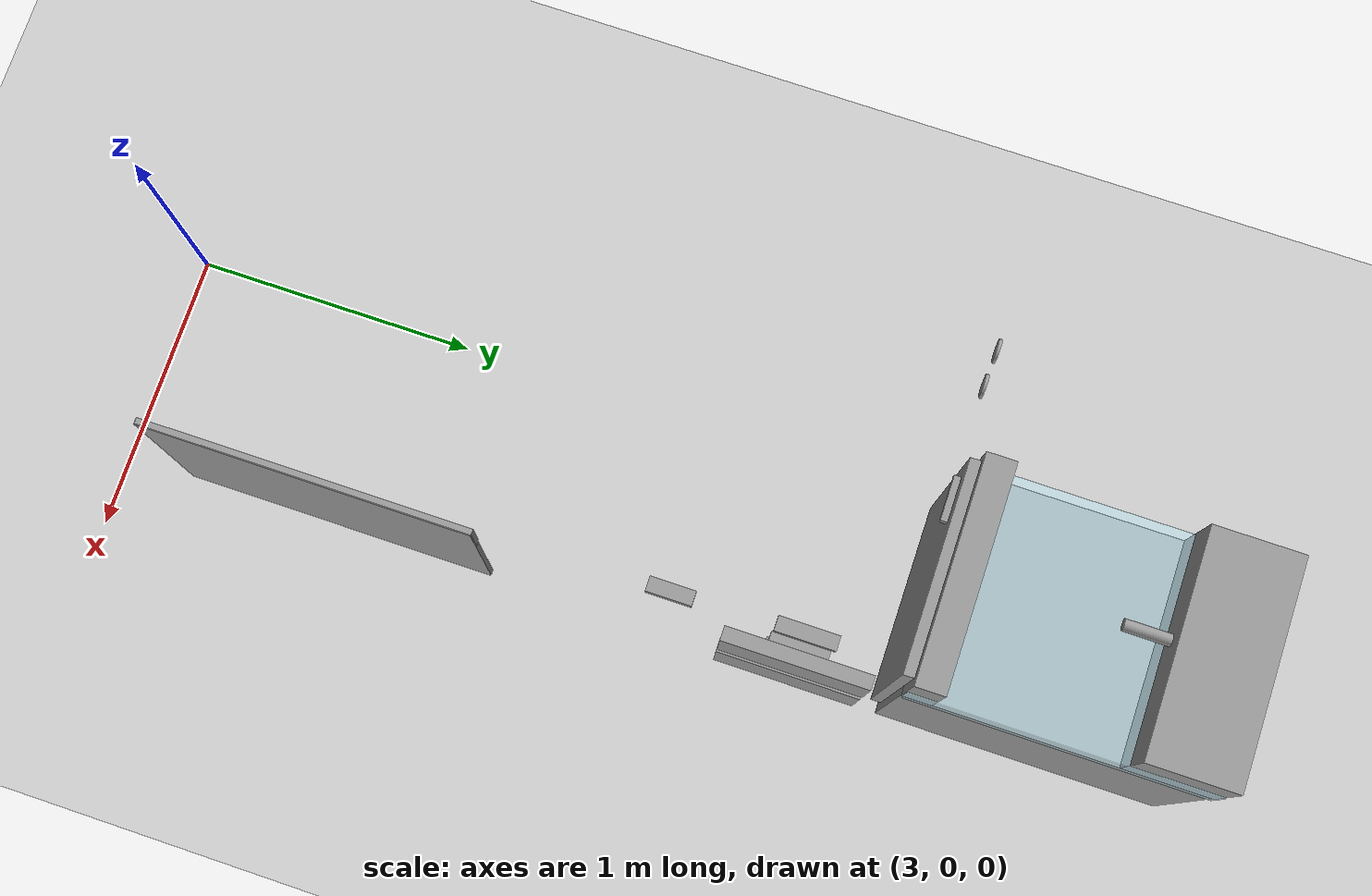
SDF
<sdf version="1.7">
 <world name="default">
  <model name="ground_plane">
   <static>1</static>
   <link name="link">
    <collision name="collision">
     <geometry><plane><normal>0 0 1</normal><size>100 100</size></plane></geometry>
     <surface>
      <contact><collide_bitmask>65535</collide_bitmask></contact>
      <friction><ode><mu>100</mu><mu2>50</mu2></ode></friction>
     </surface>
    </collision>
    <visual name="visual">
     <cast_shadows>0</cast_shadows>
     <geometry><plane><normal>0 0 1</normal><size>100 100</size></plane></geometry>
     <material>
      <script><uri>file://media/materials/scripts/gazebo.material</uri><name>Gazebo/Grey</name></script>
     </material>
    </visual>
   </link>
  </model>
  <model name="my_kitchen">
   <link name="link_0">
    <inertial>
     <mass>1</mass>
     <inertia><ixx>0.145833</ixx><ixy>0</ixy><ixz>0</ixz><iyy>0.145833</iyy><iyz>0</iyz><izz>0.125</izz></inertia>
    </inertial>
    <pose>-0.465747 -1.6095 0.842537 0 -0 0</pose>
    <visual name="visual">
     <pose>0 0 0 0 1.5707 0</pose>
     <geometry><cylinder><radius>0.04</radius><length>0.01</length></cylinder></geometry>
     <material>
      <lighting>1</lighting>
      <script><uri>file://media/materials/scripts/gazebo.material</uri><name>Gazebo/Grey</name></script>
      <shader type="pixel"><normal_map>__default__</normal_map></shader>
      <ambient>0.9 0.9 0.9 1</ambient>
      <diffuse>0.9 0.9 0.9 1</diffuse>
      <specular>0.01 0.01 0.01 1</specular>
      <emissive>0 0 0 1</emissive>
     </material>
    </visual>
    <collision name="collision">
     <pose>0 0 0 0 1.5707 0</pose>
     <geometry><cylinder><radius>0.04</radius><length>0.01</length></cylinder></geometry>
     <surface>
      <friction>
       <ode><mu>1</mu><mu2>1</mu2><fdir1>0 0 0</fdir1><slip1>0</slip1><slip2>0</slip2></ode>
       <torsional>
        <coefficient>1</coefficient>
        <patch_radius>0</patch_radius>
        <surface_radius>0</surface_radius>
        <use_patch_radius>1</use_patch_radius>
        <ode><slip>0</slip></ode>
       </torsional>
      </friction>
      <bounce><restitution_coefficient>0</restitution_coefficient><threshold>1e+06</threshold></bounce>
      <contact>
       <collide_without_contact>0</collide_without_contact>
       <collide_without_contact_bitmask>1</collide_without_contact_bitmask>
       <collide_bitmask>1</collide_bitmask>
       <ode>
        <soft_cfm>0</soft_cfm>
        <soft_erp>0.2</soft_erp>
        <kp>1e+13</kp>
        <kd>1</kd>
        <max_vel>0.01</max_vel>
        <min_depth>0</min_depth>
       </ode>
       <bullet>
        <split_impulse>1</split_impulse>
        <split_impulse_penetration_threshold>-0.01</split_impulse_penetration_threshold>
        <soft_cfm>0</soft_cfm>
        <soft_erp>0.2</soft_erp>
        <kp>1e+13</kp>
        <kd>1</kd>
       </bullet>
      </contact>
     </surface>
    </collision>
   </link>
   <link name="link_0_clone">
    <inertial>
     <mass>1</mass>
     <inertia><ixx>0.145833</ixx><ixy>0</ixy><ixz>0</ixz><iyy>0.145833</iyy><iyz>0</iyz><izz>0.125</izz></inertia>
    </inertial>
    <pose>-1.12966 -0.882077 0.956076 0 -0 0</pose>
    <gravity>0</gravity>
    <visual name="visual">
     <pose>0 0 0 0 1.5707 0</pose>
     <geometry><cylinder><radius>0.02</radius><length>0.15</length></cylinder></geometry>
     <material>
      <lighting>1</lighting>
      <script><uri>file://media/materials/scripts/gazebo.material</uri><name>Gazebo/Grey</name></script>
      <shader type="pixel"><normal_map>__default__</normal_map></shader>
      <ambient>0.2 0.2 0.2 1</ambient>
      <diffuse>0.2 0.2 0.2 1</diffuse>
      <specular>0.01 0.01 0.01 1</specular>
      <emissive>0 0 0 1</emissive>
     </material>
    </visual>
    <collision name="collision">
     <pose>0 0 0 0 1.5707 0</pose>
     <geometry><cylinder><radius>0.02</radius><length>0.15</length></cylinder></geometry>
     <surface>
      <friction>
       <ode><mu>1</mu><mu2>1</mu2><fdir1>0 0 0</fdir1><slip1>0</slip1><slip2>0</slip2></ode>
       <torsional>
        <coefficient>1</coefficient>
        <patch_radius>0</patch_radius>
        <surface_radius>0</surface_radius>
        <use_patch_radius>1</use_patch_radius>
        <ode><slip>0</slip></ode>
       </torsional>
      </friction>
      <bounce><restitution_coefficient>0</restitution_coefficient><threshold>1e+06</threshold></bounce>
      <contact>
       <collide_without_contact>0</collide_without_contact>
       <collide_without_contact_bitmask>1</collide_without_contact_bitmask>
       <collide_bitmask>1</collide_bitmask>
       <ode>
        <soft_cfm>0</soft_cfm>
        <soft_erp>0.2</soft_erp>
        <kp>1e+13</kp>
        <kd>1</kd>
        <max_vel>0.01</max_vel>
        <min_depth>0</min_depth>
       </ode>
       <bullet>
        <split_impulse>1</split_impulse>
        <split_impulse_penetration_threshold>-0.01</split_impulse_penetration_threshold>
        <soft_cfm>0</soft_cfm>
        <soft_erp>0.2</soft_erp>
        <kp>1e+13</kp>
        <kd>1</kd>
       </bullet>
      </contact>
     </surface>
    </collision>
   </link>
   <link name="link_0_clone_0">
    <inertial>
     <mass>1</mass>
     <inertia><ixx>0.145833</ixx><ixy>0</ixy><ixz>0</ixz><iyy>0.145833</iyy><iyz>0</iyz><izz>0.125</izz></inertia>
    </inertial>
    <pose>-0.459347 -1.48795 0.840731 0 -0 0</pose>
    <visual name="visual">
     <pose>0 0 0 0 1.5707 0</pose>
     <geometry><cylinder><radius>0.04</radius><length>0.01</length></cylinder></geometry>
     <material>
      <lighting>1</lighting>
      <script><uri>file://media/materials/scripts/gazebo.material</uri><name>Gazebo/Grey</name></script>
      <shader type="pixel"><normal_map>__default__</normal_map></shader>
      <ambient>0.9 0.9 0.9 1</ambient>
      <diffuse>0.9 0.9 0.9 1</diffuse>
      <specular>0.01 0.01 0.01 1</specular>
      <emissive>0 0 0 1</emissive>
     </material>
    </visual>
    <collision name="collision">
     <pose>0 0 0 0 1.5707 0</pose>
     <geometry><cylinder><radius>0.04</radius><length>0.01</length></cylinder></geometry>
     <surface>
      <friction>
       <ode><mu>1</mu><mu2>1</mu2><fdir1>0 0 0</fdir1><slip1>0</slip1><slip2>0</slip2></ode>
       <torsional>
        <coefficient>1</coefficient>
        <patch_radius>0</patch_radius>
        <surface_radius>0</surface_radius>
        <use_patch_radius>1</use_patch_radius>
        <ode><slip>0</slip></ode>
       </torsional>
      </friction>
      <bounce><restitution_coefficient>0</restitution_coefficient><threshold>1e+06</threshold></bounce>
      <contact>
       <collide_without_contact>0</collide_without_contact>
       <collide_without_contact_bitmask>1</collide_without_contact_bitmask>
       <collide_bitmask>1</collide_bitmask>
       <ode>
        <soft_cfm>0</soft_cfm>
        <soft_erp>0.2</soft_erp>
        <kp>1e+13</kp>
        <kd>1</kd>
        <max_vel>0.01</max_vel>
        <min_depth>0</min_depth>
       </ode>
       <bullet>
        <split_impulse>1</split_impulse>
        <split_impulse_penetration_threshold>-0.01</split_impulse_penetration_threshold>
        <soft_cfm>0</soft_cfm>
        <soft_erp>0.2</soft_erp>
        <kp>1e+13</kp>
        <kd>1</kd>
       </bullet>
      </contact>
     </surface>
    </collision>
   </link>
   <link name="link_0_clone_1">
    <inertial>
     <mass>1</mass>
     <inertia><ixx>0.145833</ixx><ixy>0</ixy><ixz>0</ixz><iyy>0.145833</iyy><iyz>0</iyz><izz>0.125</izz></inertia>
    </inertial>
    <pose>1.8493 -0.544143 0.806367 0 -0 0</pose>
    <visual name="visual">
     <pose>0 0 0 1.57013 1.5707 -0.000572</pose>
     <geometry><cylinder><radius>0.04</radius><length>0.01</length></cylinder></geometry>
     <material>
      <lighting>1</lighting>
      <script><uri>file://media/materials/scripts/gazebo.material</uri><name>Gazebo/Grey</name></script>
      <shader type="pixel"><normal_map>__default__</normal_map></shader>
      <ambient>0.9 0.9 0.9 1</ambient>
      <diffuse>0.9 0.9 0.9 1</diffuse>
      <specular>0.01 0.01 0.01 1</specular>
      <emissive>0 0 0 1</emissive>
     </material>
    </visual>
    <collision name="collision">
     <pose>0 0 0 1.5707 1.5707 -0</pose>
     <geometry><cylinder><radius>0.04</radius><length>0.01</length></cylinder></geometry>
     <surface>
      <friction>
       <ode><mu>1</mu><mu2>1</mu2><fdir1>0 0 0</fdir1><slip1>0</slip1><slip2>0</slip2></ode>
       <torsional>
        <coefficient>1</coefficient>
        <patch_radius>0</patch_radius>
        <surface_radius>0</surface_radius>
        <use_patch_radius>1</use_patch_radius>
        <ode><slip>0</slip></ode>
       </torsional>
      </friction>
      <bounce><restitution_coefficient>0</restitution_coefficient><threshold>1e+06</threshold></bounce>
      <contact>
       <collide_without_contact>0</collide_without_contact>
       <collide_without_contact_bitmask>1</collide_without_contact_bitmask>
       <collide_bitmask>1</collide_bitmask>
       <ode>
        <soft_cfm>0</soft_cfm>
        <soft_erp>0.2</soft_erp>
        <kp>1e+13</kp>
        <kd>1</kd>
        <max_vel>0.01</max_vel>
        <min_depth>0</min_depth>
       </ode>
       <bullet>
        <split_impulse>1</split_impulse>
        <split_impulse_penetration_threshold>-0.01</split_impulse_penetration_threshold>
        <soft_cfm>0</soft_cfm>
        <soft_erp>0.2</soft_erp>
        <kp>1e+13</kp>
        <kd>1</kd>
       </bullet>
      </contact>
     </surface>
    </collision>
   </link>
   <link name="link_0_clone_1_clone">
    <inertial>
     <mass>1</mass>
     <inertia><ixx>0.145833</ixx><ixy>0</ixy><ixz>0</ixz><iyy>0.145833</iyy><iyz>0</iyz><izz>0.125</izz></inertia>
    </inertial>
    <pose>1.72105 -0.544038 0.809821 0 -0 0</pose>
    <visual name="visual">
     <pose>0 0 0 1.57013 1.5707 -0.000572</pose>
     <geometry><cylinder><radius>0.04</radius><length>0.01</length></cylinder></geometry>
     <material>
      <lighting>1</lighting>
      <script><uri>file://media/materials/scripts/gazebo.material</uri><name>Gazebo/Grey</name></script>
      <shader type="pixel"><normal_map>__default__</normal_map></shader>
      <ambient>0.9 0.9 0.9 1</ambient>
      <diffuse>0.9 0.9 0.9 1</diffuse>
      <specular>0.01 0.01 0.01 1</specular>
      <emissive>0 0 0 1</emissive>
     </material>
    </visual>
    <collision name="collision">
     <pose>0 0 0 1.57013 1.5707 -0.000572</pose>
     <geometry><cylinder><radius>0.04</radius><length>0.01</length></cylinder></geometry>
     <surface>
      <friction>
       <ode><mu>1</mu><mu2>1</mu2><fdir1>0 0 0</fdir1><slip1>0</slip1><slip2>0</slip2></ode>
       <torsional>
        <coefficient>1</coefficient>
        <patch_radius>0</patch_radius>
        <surface_radius>0</surface_radius>
        <use_patch_radius>1</use_patch_radius>
        <ode><slip>0</slip></ode>
       </torsional>
      </friction>
      <bounce><restitution_coefficient>0</restitution_coefficient><threshold>1e+06</threshold></bounce>
      <contact>
       <collide_without_contact>0</collide_without_contact>
       <collide_without_contact_bitmask>1</collide_without_contact_bitmask>
       <collide_bitmask>1</collide_bitmask>
       <ode>
        <soft_cfm>0</soft_cfm>
        <soft_erp>0.2</soft_erp>
        <kp>1e+13</kp>
        <kd>1</kd>
        <max_vel>0.01</max_vel>
        <min_depth>0</min_depth>
       </ode>
       <bullet>
        <split_impulse>1</split_impulse>
        <split_impulse_penetration_threshold>-0.01</split_impulse_penetration_threshold>
        <soft_cfm>0</soft_cfm>
        <soft_erp>0.2</soft_erp>
        <kp>1e+13</kp>
        <kd>1</kd>
       </bullet>
      </contact>
     </surface>
    </collision>
   </link>
   <link name="link_clone_0_clone_0">
    <inertial>
     <mass>1</mass>
     <inertia>
      <ixx>0.166667</ixx>
      <ixy>0</ixy>
      <ixz>0</ixz>
      <iyy>0.166667</iyy>
      <iyz>0</iyz>
      <izz>0.166667</izz>
     </inertia>
    </inertial>
    <pose>1.44476 -0.529129 0.013848 0 -0 0</pose>
    <visual name="visual">
     <geometry><box><size>1.1 0.8 0.02</size></box></geometry>
     <material>
      <script><name>Gazebo/Grey</name><uri>file://media/materials/scripts/gazebo.material</uri></script>
      <shader type="pixel"><normal_map>__default__</normal_map></shader>
      <ambient>0.2 0.2 0.2 1</ambient>
      <diffuse>0.2 0.2 0.2 1</diffuse>
      <specular>0.01 0.01 0.01 1</specular>
      <emissive>0 0 0 1</emissive>
     </material>
     <pose>0 0 0.5 1.5707 -0 0</pose>
    </visual>
    <collision name="collision">
     <pose>0 0 0.5 1.5707 -0 0</pose>
     <geometry><box><size>1.1 0.8 0.02</size></box></geometry>
     <surface>
      <friction>
       <ode><mu>1</mu><mu2>1</mu2><fdir1>0 0 0</fdir1><slip1>0</slip1><slip2>0</slip2></ode>
       <torsional>
        <coefficient>1</coefficient>
        <patch_radius>0</patch_radius>
        <surface_radius>0</surface_radius>
        <use_patch_radius>1</use_patch_radius>
        <ode><slip>0</slip></ode>
       </torsional>
      </friction>
      <bounce><restitution_coefficient>0</restitution_coefficient><threshold>1e+06</threshold></bounce>
      <contact>
       <collide_without_contact>0</collide_without_contact>
       <collide_without_contact_bitmask>1</collide_without_contact_bitmask>
       <collide_bitmask>1</collide_bitmask>
       <ode>
        <soft_cfm>0</soft_cfm>
        <soft_erp>0.2</soft_erp>
        <kp>1e+13</kp>
        <kd>1</kd>
        <max_vel>0.01</max_vel>
        <min_depth>0</min_depth>
       </ode>
       <bullet>
        <split_impulse>1</split_impulse>
        <split_impulse_penetration_threshold>-0.01</split_impulse_penetration_threshold>
        <soft_cfm>0</soft_cfm>
        <soft_erp>0.2</soft_erp>
        <kp>1e+13</kp>
        <kd>1</kd>
       </bullet>
      </contact>
     </surface>
    </collision>
   </link>
   <link name="link_clone_0_clone_0_clone">
    <inertial>
     <mass>1</mass>
     <inertia>
      <ixx>0.166667</ixx>
      <ixy>0</ixy>
      <ixz>0</ixz>
      <iyy>0.166667</iyy>
      <iyz>0</iyz>
      <izz>0.166667</izz>
     </inertia>
    </inertial>
    <pose>1.44317 -0.53222 0.313912 0 -0 0</pose>
    <visual name="visual">
     <geometry><box><size>1.1 0.2 0.02</size></box></geometry>
     <material>
      <script><name>Gazebo/Grey</name><uri>file://media/materials/scripts/gazebo.material</uri></script>
      <shader type="pixel"><normal_map>__default__</normal_map></shader>
      <ambient>0.4 0.4 0.4 1</ambient>
      <diffuse>0.4 0.4 0.4 1</diffuse>
      <specular>0.01 0.01 0.01 1</specular>
      <emissive>0 0 0 1</emissive>
     </material>
     <pose>0 0 0.5 1.5707 -0 0</pose>
    </visual>
    <collision name="collision">
     <pose>0 0 0.5 1.5707 -0 0</pose>
     <geometry><box><size>1.1 0.2 0.02</size></box></geometry>
     <surface>
      <friction>
       <ode><mu>1</mu><mu2>1</mu2><fdir1>0 0 0</fdir1><slip1>0</slip1><slip2>0</slip2></ode>
       <torsional>
        <coefficient>1</coefficient>
        <patch_radius>0</patch_radius>
        <surface_radius>0</surface_radius>
        <use_patch_radius>1</use_patch_radius>
        <ode><slip>0</slip></ode>
       </torsional>
      </friction>
      <bounce><restitution_coefficient>0</restitution_coefficient><threshold>1e+06</threshold></bounce>
      <contact>
       <collide_without_contact>0</collide_without_contact>
       <collide_without_contact_bitmask>1</collide_without_contact_bitmask>
       <collide_bitmask>1</collide_bitmask>
       <ode>
        <soft_cfm>0</soft_cfm>
        <soft_erp>0.2</soft_erp>
        <kp>1e+13</kp>
        <kd>1</kd>
        <max_vel>0.01</max_vel>
        <min_depth>0</min_depth>
       </ode>
       <bullet>
        <split_impulse>1</split_impulse>
        <split_impulse_penetration_threshold>-0.01</split_impulse_penetration_threshold>
        <soft_cfm>0</soft_cfm>
        <soft_erp>0.2</soft_erp>
        <kp>1e+13</kp>
        <kd>1</kd>
       </bullet>
      </contact>
     </surface>
    </collision>
   </link>
   <link name="link_clone_0_clone_0_clone_clone">
    <inertial>
     <mass>1</mass>
     <inertia>
      <ixx>0.166667</ixx>
      <ixy>0</ixy>
      <ixz>0</ixz>
      <iyy>0.166667</iyy>
      <iyz>0</iyz>
      <izz>0.166667</izz>
     </inertia>
    </inertial>
    <pose>1.44437 -0.543751 0.146791 0 -0 0</pose>
    <gravity>0</gravity>
    <visual name="visual">
     <geometry><box><size>0.7 0.03 0.02</size></box></geometry>
     <material>
      <script><name>Gazebo/Grey</name><uri>file://media/materials/scripts/gazebo.material</uri></script>
      <shader type="pixel"><normal_map>__default__</normal_map></shader>
      <ambient>0.9 0.9 0.9 1</ambient>
      <diffuse>0.9 0.9 0.9 1</diffuse>
      <specular>0.01 0.01 0.01 1</specular>
      <emissive>0 0 0 1</emissive>
     </material>
     <pose>0 0 0.5 1.5707 -0 0</pose>
    </visual>
    <collision name="collision">
     <pose>0 0 0.5 1.5707 -0 0</pose>
     <geometry><box><size>0.7 0.03 0.02</size></box></geometry>
     <surface>
      <friction>
       <ode><mu>1</mu><mu2>1</mu2><fdir1>0 0 0</fdir1><slip1>0</slip1><slip2>0</slip2></ode>
       <torsional>
        <coefficient>1</coefficient>
        <patch_radius>0</patch_radius>
        <surface_radius>0</surface_radius>
        <use_patch_radius>1</use_patch_radius>
        <ode><slip>0</slip></ode>
       </torsional>
      </friction>
      <bounce><restitution_coefficient>0</restitution_coefficient><threshold>1e+06</threshold></bounce>
      <contact>
       <collide_without_contact>0</collide_without_contact>
       <collide_without_contact_bitmask>1</collide_without_contact_bitmask>
       <collide_bitmask>1</collide_bitmask>
       <ode>
        <soft_cfm>0</soft_cfm>
        <soft_erp>0.2</soft_erp>
        <kp>1e+13</kp>
        <kd>1</kd>
        <max_vel>0.01</max_vel>
        <min_depth>0</min_depth>
       </ode>
       <bullet>
        <split_impulse>1</split_impulse>
        <split_impulse_penetration_threshold>-0.01</split_impulse_penetration_threshold>
        <soft_cfm>0</soft_cfm>
        <soft_erp>0.2</soft_erp>
        <kp>1e+13</kp>
        <kd>1</kd>
       </bullet>
      </contact>
     </surface>
    </collision>
   </link>
   <link name="link_clone_clone">
    <inertial>
     <mass>1</mass>
     <inertia>
      <ixx>0.166667</ixx>
      <ixy>0</ixy>
      <ixz>0</ixz>
      <iyy>0.166667</iyy>
      <iyz>0</iyz>
      <izz>0.166667</izz>
     </inertia>
    </inertial>
    <pose>-1.36532 -0.875399 0.352062 0 -0 0</pose>
    <visual name="visual">
     <geometry><box><size>0.3 0.75 0.3</size></box></geometry>
     <material>
      <script><name>Gazebo/Grey</name><uri>file://media/materials/scripts/gazebo.material</uri></script>
      <shader type="pixel"><normal_map>__default__</normal_map></shader>
      <ambient>0.8 0.8 0.8 1</ambient>
      <diffuse>0.65 0.65 0.65 1</diffuse>
      <specular>0.01 0.01 0.01 1</specular>
      <emissive>0 0 0 1</emissive>
     </material>
     <pose>0 0 0.5 0 -0 0</pose>
    </visual>
    <collision name="collision">
     <pose>0 0 0.5 0 -0 0</pose>
     <geometry><box><size>0.3 0.75 0.3</size></box></geometry>
     <surface>
      <friction>
       <ode><mu>1</mu><mu2>1</mu2><fdir1>0 0 0</fdir1><slip1>0</slip1><slip2>0</slip2></ode>
       <torsional>
        <coefficient>1</coefficient>
        <patch_radius>0</patch_radius>
        <surface_radius>0</surface_radius>
        <use_patch_radius>1</use_patch_radius>
        <ode><slip>0</slip></ode>
       </torsional>
      </friction>
      <bounce><restitution_coefficient>0</restitution_coefficient><threshold>1e+06</threshold></bounce>
      <contact>
       <collide_without_contact>0</collide_without_contact>
       <collide_without_contact_bitmask>1</collide_without_contact_bitmask>
       <collide_bitmask>1</collide_bitmask>
       <ode>
        <soft_cfm>0</soft_cfm>
        <soft_erp>0.2</soft_erp>
        <kp>1e+13</kp>
        <kd>1</kd>
        <max_vel>0.01</max_vel>
        <min_depth>0</min_depth>
       </ode>
       <bullet>
        <split_impulse>1</split_impulse>
        <split_impulse_penetration_threshold>-0.01</split_impulse_penetration_threshold>
        <soft_cfm>0</soft_cfm>
        <soft_erp>0.2</soft_erp>
        <kp>1e+13</kp>
        <kd>1</kd>
       </bullet>
      </contact>
     </surface>
    </collision>
   </link>
   <link name="link_clone_clone_clone">
    <inertial>
     <mass>1</mass>
     <inertia>
      <ixx>0.166667</ixx>
      <ixy>0</ixy>
      <ixz>0</ixz>
      <iyy>0.166667</iyy>
      <iyz>0</iyz>
      <izz>0.166667</izz>
     </inertia>
    </inertial>
    <pose>-1.01121 -0.87639 -0.152519 0 -0 0</pose>
    <visual name="visual">
     <geometry><box><size>1 0.75 0.7</size></box></geometry>
     <material>
      <script><name>Gazebo/Grey</name><uri>file://media/materials/scripts/gazebo.material</uri></script>
      <shader type="pixel"><normal_map>__default__</normal_map></shader>
      <ambient>0.8 0.8 0.8 1</ambient>
      <diffuse>0.65 0.65 0.65 1</diffuse>
      <specular>0.01 0.01 0.01 1</specular>
      <emissive>0 0 0 1</emissive>
     </material>
     <pose>0 0 0.5 0 -0 0</pose>
    </visual>
    <collision name="collision">
     <pose>0 0 0.5 0 -0 0</pose>
     <geometry><box><size>1 0.75 0.7</size></box></geometry>
     <surface>
      <friction>
       <ode><mu>1</mu><mu2>1</mu2><fdir1>0 0 0</fdir1><slip1>0</slip1><slip2>0</slip2></ode>
       <torsional>
        <coefficient>1</coefficient>
        <patch_radius>0</patch_radius>
        <surface_radius>0</surface_radius>
        <use_patch_radius>1</use_patch_radius>
        <ode><slip>0</slip></ode>
       </torsional>
      </friction>
      <bounce><restitution_coefficient>0</restitution_coefficient><threshold>1e+06</threshold></bounce>
      <contact>
       <collide_without_contact>0</collide_without_contact>
       <collide_without_contact_bitmask>1</collide_without_contact_bitmask>
       <collide_bitmask>1</collide_bitmask>
       <ode>
        <soft_cfm>0</soft_cfm>
        <soft_erp>0.2</soft_erp>
        <kp>1e+13</kp>
        <kd>1</kd>
        <max_vel>0.01</max_vel>
        <min_depth>0</min_depth>
       </ode>
       <bullet>
        <split_impulse>1</split_impulse>
        <split_impulse_penetration_threshold>-0.01</split_impulse_penetration_threshold>
        <soft_cfm>0</soft_cfm>
        <soft_erp>0.2</soft_erp>
        <kp>1e+13</kp>
        <kd>1</kd>
       </bullet>
      </contact>
     </surface>
    </collision>
   </link>
   <link name="link_clone_clone_clone_0">
    <inertial>
     <mass>1</mass>
     <inertia>
      <ixx>0.166667</ixx>
      <ixy>0</ixy>
      <ixz>0</ixz>
      <iyy>0.166667</iyy>
      <iyz>0</iyz>
      <izz>0.166667</izz>
     </inertia>
    </inertial>
    <pose>-0.56153 -0.875379 0.346728 0 -0 0</pose>
    <gravity>0</gravity>
    <visual name="visual">
     <geometry><box><size>0.1 0.75 0.3</size></box></geometry>
     <material>
      <script><name>Gazebo/Grey</name><uri>file://media/materials/scripts/gazebo.material</uri></script>
      <shader type="pixel"><normal_map>__default__</normal_map></shader>
      <ambient>0.8 0.8 0.8 1</ambient>
      <diffuse>0.65 0.65 0.65 1</diffuse>
      <specular>0.01 0.01 0.01 1</specular>
      <emissive>0 0 0 1</emissive>
     </material>
     <pose>0 0 0.5 0 -0 0</pose>
    </visual>
    <collision name="collision">
     <pose>0 0 0.5 0 -0 0</pose>
     <geometry><box><size>0.1 0.75 0.3</size></box></geometry>
     <surface>
      <friction>
       <ode><mu>1</mu><mu2>1</mu2><fdir1>0 0 0</fdir1><slip1>0</slip1><slip2>0</slip2></ode>
       <torsional>
        <coefficient>1</coefficient>
        <patch_radius>0</patch_radius>
        <surface_radius>0</surface_radius>
        <use_patch_radius>1</use_patch_radius>
        <ode><slip>0</slip></ode>
       </torsional>
      </friction>
      <bounce><restitution_coefficient>0</restitution_coefficient><threshold>1e+06</threshold></bounce>
      <contact>
       <collide_without_contact>0</collide_without_contact>
       <collide_without_contact_bitmask>1</collide_without_contact_bitmask>
       <collide_bitmask>1</collide_bitmask>
       <ode>
        <soft_cfm>0</soft_cfm>
        <soft_erp>0.2</soft_erp>
        <kp>1e+13</kp>
        <kd>1</kd>
        <max_vel>0.01</max_vel>
        <min_depth>0</min_depth>
       </ode>
       <bullet>
        <split_impulse>1</split_impulse>
        <split_impulse_penetration_threshold>-0.01</split_impulse_penetration_threshold>
        <soft_cfm>0</soft_cfm>
        <soft_erp>0.2</soft_erp>
        <kp>1e+13</kp>
        <kd>1</kd>
       </bullet>
      </contact>
     </surface>
    </collision>
   </link>
   <link name="link_clone_clone_clone_0_clone_clone_clone">
    <inertial>
     <mass>1</mass>
     <inertia>
      <ixx>0.166667</ixx>
      <ixy>0</ixy>
      <ixz>0</ixz>
      <iyy>0.166667</iyy>
      <iyz>0</iyz>
      <izz>0.166667</izz>
     </inertia>
    </inertial>
    <pose>-0.4781 -1.10993 0.338029 0 -0 0</pose>
    <gravity>0</gravity>
    <visual name="visual">
     <geometry><box><size>0.05 0.15 0.03</size></box></geometry>
     <material>
      <script><name>Gazebo/Grey</name><uri>file://media/materials/scripts/gazebo.material</uri></script>
      <shader type="pixel"><normal_map>__default__</normal_map></shader>
      <ambient>0.9 0.9 0.9 1</ambient>
      <diffuse>0.8 0.8 0.8 1</diffuse>
      <specular>0.01 0.01 0.01 1</specular>
      <emissive>0 0 0 1</emissive>
     </material>
     <pose>0 0 0.5 0 -0 0</pose>
    </visual>
    <collision name="collision">
     <pose>0 0 0.5 0 -0 0</pose>
     <geometry><box><size>0.05 0.15 0.03</size></box></geometry>
     <surface>
      <friction>
       <ode><mu>1</mu><mu2>1</mu2><fdir1>0 0 0</fdir1><slip1>0</slip1><slip2>0</slip2></ode>
       <torsional>
        <coefficient>1</coefficient>
        <patch_radius>0</patch_radius>
        <surface_radius>0</surface_radius>
        <use_patch_radius>1</use_patch_radius>
        <ode><slip>0</slip></ode>
       </torsional>
      </friction>
      <bounce><restitution_coefficient>0</restitution_coefficient><threshold>1e+06</threshold></bounce>
      <contact>
       <collide_without_contact>0</collide_without_contact>
       <collide_without_contact_bitmask>1</collide_without_contact_bitmask>
       <collide_bitmask>1</collide_bitmask>
       <ode>
        <soft_cfm>0</soft_cfm>
        <soft_erp>0.2</soft_erp>
        <kp>1e+13</kp>
        <kd>1</kd>
        <max_vel>0.01</max_vel>
        <min_depth>0</min_depth>
       </ode>
       <bullet>
        <split_impulse>1</split_impulse>
        <split_impulse_penetration_threshold>-0.01</split_impulse_penetration_threshold>
        <soft_cfm>0</soft_cfm>
        <soft_erp>0.2</soft_erp>
        <kp>1e+13</kp>
        <kd>1</kd>
       </bullet>
      </contact>
     </surface>
    </collision>
   </link>
   <link name="link_clone_clone_clone_0_clone_clone_clone_0_clone">
    <inertial>
     <mass>1</mass>
     <inertia>
      <ixx>0.166667</ixx>
      <ixy>0</ixy>
      <ixz>0</ixz>
      <iyy>0.166667</iyy>
      <iyz>0</iyz>
      <izz>0.166667</izz>
     </inertia>
    </inertial>
    <pose>-0.50046 -0.88146 0.016041 0 -0 0</pose>
    <visual name="visual">
     <geometry><box><size>0.05 0.7 0.85</size></box></geometry>
     <material>
      <script><name>Gazebo/Grey</name><uri>file://media/materials/scripts/gazebo.material</uri></script>
      <shader type="pixel"><normal_map>__default__</normal_map></shader>
      <ambient>0.4 0.4 0.4 1</ambient>
      <diffuse>0.4 0.4 0.4 1</diffuse>
      <specular>0.01 0.01 0.01 1</specular>
      <emissive>0 0 0 1</emissive>
     </material>
     <pose>0 0 0.5 0 -0 0</pose>
    </visual>
    <collision name="collision">
     <pose>0 0 0.5 0 -0 0</pose>
     <geometry><box><size>0.05 0.7 0.85</size></box></geometry>
     <surface>
      <friction>
       <ode><mu>1</mu><mu2>1</mu2><fdir1>0 0 0</fdir1><slip1>0</slip1><slip2>0</slip2></ode>
       <torsional>
        <coefficient>1</coefficient>
        <patch_radius>0</patch_radius>
        <surface_radius>0</surface_radius>
        <use_patch_radius>1</use_patch_radius>
        <ode><slip>0</slip></ode>
       </torsional>
      </friction>
      <bounce><restitution_coefficient>0</restitution_coefficient><threshold>1e+06</threshold></bounce>
      <contact>
       <collide_without_contact>0</collide_without_contact>
       <collide_without_contact_bitmask>1</collide_without_contact_bitmask>
       <collide_bitmask>1</collide_bitmask>
       <ode>
        <soft_cfm>0</soft_cfm>
        <soft_erp>0.2</soft_erp>
        <kp>1e+13</kp>
        <kd>1</kd>
        <max_vel>0.01</max_vel>
        <min_depth>0</min_depth>
       </ode>
       <bullet>
        <split_impulse>1</split_impulse>
        <split_impulse_penetration_threshold>-0.01</split_impulse_penetration_threshold>
        <soft_cfm>0</soft_cfm>
        <soft_erp>0.2</soft_erp>
        <kp>1e+13</kp>
        <kd>1</kd>
       </bullet>
      </contact>
     </surface>
    </collision>
   </link>
   <link name="link_clone_clone_clone_0_clone_clone_clone_0_clone_clone_clone_0_clone_0">
    <inertial>
     <mass>1</mass>
     <inertia>
      <ixx>0.166667</ixx>
      <ixy>0</ixy>
      <ixz>0</ixz>
      <iyy>0.166667</iyy>
      <iyz>0</iyz>
      <izz>0.166667</izz>
     </inertia>
    </inertial>
    <pose>-0.174147 -0.517268 0.010923 0 -0 0</pose>
    <gravity>0</gravity>
    <visual name="visual">
     <geometry><box><size>0.05 0.5 0.25</size></box></geometry>
     <material>
      <script><name>Gazebo/Grey</name><uri>file://media/materials/scripts/gazebo.material</uri></script>
      <shader type="pixel"><normal_map>__default__</normal_map></shader>
      <ambient>0.4 0.4 0.4 1</ambient>
      <diffuse>0.4 0.4 0.4 1</diffuse>
      <specular>0.01 0.01 0.01 1</specular>
      <emissive>0 0 0 1</emissive>
     </material>
     <pose>0 0 0.5 0 -0 1.5707</pose>
    </visual>
    <collision name="collision">
     <pose>0 0 0.5 0 -0 1.5707</pose>
     <geometry><box><size>0.05 0.5 0.25</size></box></geometry>
     <surface>
      <friction>
       <ode><mu>1</mu><mu2>1</mu2><fdir1>0 0 0</fdir1><slip1>0</slip1><slip2>0</slip2></ode>
       <torsional>
        <coefficient>1</coefficient>
        <patch_radius>0</patch_radius>
        <surface_radius>0</surface_radius>
        <use_patch_radius>1</use_patch_radius>
        <ode><slip>0</slip></ode>
       </torsional>
      </friction>
      <bounce><restitution_coefficient>0</restitution_coefficient><threshold>1e+06</threshold></bounce>
      <contact>
       <collide_without_contact>0</collide_without_contact>
       <collide_without_contact_bitmask>1</collide_without_contact_bitmask>
       <collide_bitmask>1</collide_bitmask>
       <ode>
        <soft_cfm>0</soft_cfm>
        <soft_erp>0.2</soft_erp>
        <kp>1e+13</kp>
        <kd>1</kd>
        <max_vel>0.01</max_vel>
        <min_depth>0</min_depth>
       </ode>
       <bullet>
        <split_impulse>1</split_impulse>
        <split_impulse_penetration_threshold>-0.01</split_impulse_penetration_threshold>
        <soft_cfm>0</soft_cfm>
        <soft_erp>0.2</soft_erp>
        <kp>1e+13</kp>
        <kd>1</kd>
       </bullet>
      </contact>
     </surface>
    </collision>
   </link>
   <link name="link_clone_clone_clone_0_clone_clone_clone_0_clone_clone_clone_0_clone_0_clone">
    <inertial>
     <mass>1</mass>
     <inertia>
      <ixx>0.166667</ixx>
      <ixy>0</ixy>
      <ixz>0</ixz>
      <iyy>0.166667</iyy>
      <iyz>0</iyz>
      <izz>0.166667</izz>
     </inertia>
    </inertial>
    <pose>-0.172613 -0.514864 -0.287733 0 -0 0</pose>
    <visual name="visual">
     <geometry><box><size>0.05 0.5 0.25</size></box></geometry>
     <material>
      <script><name>Gazebo/Grey</name><uri>file://media/materials/scripts/gazebo.material</uri></script>
      <shader type="pixel"><normal_map>__default__</normal_map></shader>
      <ambient>0.4 0.4 0.4 1</ambient>
      <diffuse>0.4 0.4 0.4 1</diffuse>
      <specular>0.01 0.01 0.01 1</specular>
      <emissive>0 0 0 1</emissive>
     </material>
     <pose>0 0 0.5 0 -0 1.5707</pose>
    </visual>
    <collision name="collision">
     <pose>0 0 0.5 0 -0 1.5707</pose>
     <geometry><box><size>0.05 0.5 0.25</size></box></geometry>
     <surface>
      <friction>
       <ode><mu>1</mu><mu2>1</mu2><fdir1>0 0 0</fdir1><slip1>0</slip1><slip2>0</slip2></ode>
       <torsional>
        <coefficient>1</coefficient>
        <patch_radius>0</patch_radius>
        <surface_radius>0</surface_radius>
        <use_patch_radius>1</use_patch_radius>
        <ode><slip>0</slip></ode>
       </torsional>
      </friction>
      <bounce><restitution_coefficient>0</restitution_coefficient><threshold>1e+06</threshold></bounce>
      <contact>
       <collide_without_contact>0</collide_without_contact>
       <collide_without_contact_bitmask>1</collide_without_contact_bitmask>
       <collide_bitmask>1</collide_bitmask>
       <ode>
        <soft_cfm>0</soft_cfm>
        <soft_erp>0.2</soft_erp>
        <kp>1e+13</kp>
        <kd>1</kd>
        <max_vel>0.01</max_vel>
        <min_depth>0</min_depth>
       </ode>
       <bullet>
        <split_impulse>1</split_impulse>
        <split_impulse_penetration_threshold>-0.01</split_impulse_penetration_threshold>
        <soft_cfm>0</soft_cfm>
        <soft_erp>0.2</soft_erp>
        <kp>1e+13</kp>
        <kd>1</kd>
       </bullet>
      </contact>
     </surface>
    </collision>
   </link>
   <link name="link_clone_clone_clone_0_clone_clone_clone_clone_1_clone_0">
    <inertial>
     <mass>1</mass>
     <inertia>
      <ixx>0.166667</ixx>
      <ixy>0</ixy>
      <ixz>0</ixz>
      <iyy>0.166667</iyy>
      <iyz>0</iyz>
      <izz>0.166667</izz>
     </inertia>
    </inertial>
    <pose>0.264715 -0.561956 0.338029 0 -0 0</pose>
    <gravity>0</gravity>
    <visual name="visual">
     <geometry><box><size>0.05 0.15 0.03</size></box></geometry>
     <material>
      <script><name>Gazebo/Grey</name><uri>file://media/materials/scripts/gazebo.material</uri></script>
      <shader type="pixel"><normal_map>__default__</normal_map></shader>
      <ambient>0.9 0.9 0.9 1</ambient>
      <diffuse>0.8 0.8 0.8 1</diffuse>
      <specular>0.01 0.01 0.01 1</specular>
      <emissive>0 0 0 1</emissive>
     </material>
     <pose>0 0 0.5 0 -0 1.5707</pose>
    </visual>
    <collision name="collision">
     <pose>0 0 0.5 0 -0 1.5707</pose>
     <geometry><box><size>0.05 0.15 0.03</size></box></geometry>
     <surface>
      <friction>
       <ode><mu>1</mu><mu2>1</mu2><fdir1>0 0 0</fdir1><slip1>0</slip1><slip2>0</slip2></ode>
       <torsional>
        <coefficient>1</coefficient>
        <patch_radius>0</patch_radius>
        <surface_radius>0</surface_radius>
        <use_patch_radius>1</use_patch_radius>
        <ode><slip>0</slip></ode>
       </torsional>
      </friction>
      <bounce><restitution_coefficient>0</restitution_coefficient><threshold>1e+06</threshold></bounce>
      <contact>
       <collide_without_contact>0</collide_without_contact>
       <collide_without_contact_bitmask>1</collide_without_contact_bitmask>
       <collide_bitmask>1</collide_bitmask>
       <ode>
        <soft_cfm>0</soft_cfm>
        <soft_erp>0.2</soft_erp>
        <kp>1e+13</kp>
        <kd>1</kd>
        <max_vel>0.01</max_vel>
        <min_depth>0</min_depth>
       </ode>
       <bullet>
        <split_impulse>1</split_impulse>
        <split_impulse_penetration_threshold>-0.01</split_impulse_penetration_threshold>
        <soft_cfm>0</soft_cfm>
        <soft_erp>0.2</soft_erp>
        <kp>1e+13</kp>
        <kd>1</kd>
       </bullet>
      </contact>
     </surface>
    </collision>
   </link>
   <link name="link_clone_clone_clone_0_clone_clone_clone_clone_1_clone_0_clone">
    <inertial>
     <mass>1</mass>
     <inertia>
      <ixx>0.166667</ixx>
      <ixy>0</ixy>
      <ixz>0</ixz>
      <iyy>0.166667</iyy>
      <iyz>0</iyz>
      <izz>0.166667</izz>
     </inertia>
    </inertial>
    <pose>-0.172178 -0.559644 0.047956 0 -0 0</pose>
    <gravity>0</gravity>
    <visual name="visual">
     <geometry><box><size>0.05 0.2 0.03</size></box></geometry>
     <material>
      <script><name>Gazebo/Grey</name><uri>file://media/materials/scripts/gazebo.material</uri></script>
      <shader type="pixel"><normal_map>__default__</normal_map></shader>
      <ambient>0.9 0.9 0.9 1</ambient>
      <diffuse>0.8 0.8 0.8 1</diffuse>
      <specular>0.01 0.01 0.01 1</specular>
      <emissive>0 0 0 1</emissive>
     </material>
     <pose>0 0 0.5 0 -0 1.5707</pose>
    </visual>
    <collision name="collision">
     <pose>0 0 0.5 0 -0 1.5707</pose>
     <geometry><box><size>0.05 0.2 0.03</size></box></geometry>
     <surface>
      <friction>
       <ode><mu>1</mu><mu2>1</mu2><fdir1>0 0 0</fdir1><slip1>0</slip1><slip2>0</slip2></ode>
       <torsional>
        <coefficient>1</coefficient>
        <patch_radius>0</patch_radius>
        <surface_radius>0</surface_radius>
        <use_patch_radius>1</use_patch_radius>
        <ode><slip>0</slip></ode>
       </torsional>
      </friction>
      <bounce><restitution_coefficient>0</restitution_coefficient><threshold>1e+06</threshold></bounce>
      <contact>
       <collide_without_contact>0</collide_without_contact>
       <collide_without_contact_bitmask>1</collide_without_contact_bitmask>
       <collide_bitmask>1</collide_bitmask>
       <ode>
        <soft_cfm>0</soft_cfm>
        <soft_erp>0.2</soft_erp>
        <kp>1e+13</kp>
        <kd>1</kd>
        <max_vel>0.01</max_vel>
        <min_depth>0</min_depth>
       </ode>
       <bullet>
        <split_impulse>1</split_impulse>
        <split_impulse_penetration_threshold>-0.01</split_impulse_penetration_threshold>
        <soft_cfm>0</soft_cfm>
        <soft_erp>0.2</soft_erp>
        <kp>1e+13</kp>
        <kd>1</kd>
       </bullet>
      </contact>
     </surface>
    </collision>
   </link>
   <link name="link_clone_clone_clone_0_clone_clone_clone_clone_1_clone_0_clone_clone">
    <inertial>
     <mass>1</mass>
     <inertia>
      <ixx>0.166667</ixx>
      <ixy>0</ixy>
      <ixz>0</ixz>
      <iyy>0.166667</iyy>
      <iyz>0</iyz>
      <izz>0.166667</izz>
     </inertia>
    </inertial>
    <pose>-0.171122 -0.571169 0.338029 0 -0 0</pose>
    <gravity>0</gravity>
    <visual name="visual">
     <geometry><box><size>0.05 0.2 0.03</size></box></geometry>
     <material>
      <script><name>Gazebo/Grey</name><uri>file://media/materials/scripts/gazebo.material</uri></script>
      <shader type="pixel"><normal_map>__default__</normal_map></shader>
      <ambient>0.9 0.9 0.9 1</ambient>
      <diffuse>0.8 0.8 0.8 1</diffuse>
      <specular>0.01 0.01 0.01 1</specular>
      <emissive>0 0 0 1</emissive>
     </material>
     <pose>0 0 0.5 0 -0 1.5707</pose>
    </visual>
    <collision name="collision">
     <pose>0 0 0.5 0 -0 1.5707</pose>
     <geometry><box><size>0.05 0.2 0.03</size></box></geometry>
     <surface>
      <friction>
       <ode><mu>1</mu><mu2>1</mu2><fdir1>0 0 0</fdir1><slip1>0</slip1><slip2>0</slip2></ode>
       <torsional>
        <coefficient>1</coefficient>
        <patch_radius>0</patch_radius>
        <surface_radius>0</surface_radius>
        <use_patch_radius>1</use_patch_radius>
        <ode><slip>0</slip></ode>
       </torsional>
      </friction>
      <bounce><restitution_coefficient>0</restitution_coefficient><threshold>1e+06</threshold></bounce>
      <contact>
       <collide_without_contact>0</collide_without_contact>
       <collide_without_contact_bitmask>1</collide_without_contact_bitmask>
       <collide_bitmask>1</collide_bitmask>
       <ode>
        <soft_cfm>0</soft_cfm>
        <soft_erp>0.2</soft_erp>
        <kp>1e+13</kp>
        <kd>1</kd>
        <max_vel>0.01</max_vel>
        <min_depth>0</min_depth>
       </ode>
       <bullet>
        <split_impulse>1</split_impulse>
        <split_impulse_penetration_threshold>-0.01</split_impulse_penetration_threshold>
        <soft_cfm>0</soft_cfm>
        <soft_erp>0.2</soft_erp>
        <kp>1e+13</kp>
        <kd>1</kd>
       </bullet>
      </contact>
     </surface>
    </collision>
   </link>
   <link name="link_clone_clone_clone_0_clone_clone_clone_clone_1_clone_0_clone_clone_clone">
    <inertial>
     <mass>1</mass>
     <inertia>
      <ixx>0.166667</ixx>
      <ixy>0</ixy>
      <ixz>0</ixz>
      <iyy>0.166667</iyy>
      <iyz>0</iyz>
      <izz>0.166667</izz>
     </inertia>
    </inertial>
    <pose>-0.169187 -0.575049 -0.243065 0 -0 0</pose>
    <gravity>0</gravity>
    <visual name="visual">
     <geometry><box><size>0.05 0.2 0.03</size></box></geometry>
     <material>
      <script><name>Gazebo/Grey</name><uri>file://media/materials/scripts/gazebo.material</uri></script>
      <shader type="pixel"><normal_map>__default__</normal_map></shader>
      <ambient>0.9 0.9 0.9 1</ambient>
      <diffuse>0.8 0.8 0.8 1</diffuse>
      <specular>0.01 0.01 0.01 1</specular>
      <emissive>0 0 0 1</emissive>
     </material>
     <pose>0 0 0.5 0 -0 1.5707</pose>
    </visual>
    <collision name="collision">
     <pose>0 0 0.5 0 -0 1.5707</pose>
     <geometry><box><size>0.05 0.2 0.03</size></box></geometry>
     <surface>
      <friction>
       <ode><mu>1</mu><mu2>1</mu2><fdir1>0 0 0</fdir1><slip1>0</slip1><slip2>0</slip2></ode>
       <torsional>
        <coefficient>1</coefficient>
        <patch_radius>0</patch_radius>
        <surface_radius>0</surface_radius>
        <use_patch_radius>1</use_patch_radius>
        <ode><slip>0</slip></ode>
       </torsional>
      </friction>
      <bounce><restitution_coefficient>0</restitution_coefficient><threshold>1e+06</threshold></bounce>
      <contact>
       <collide_without_contact>0</collide_without_contact>
       <collide_without_contact_bitmask>1</collide_without_contact_bitmask>
       <collide_bitmask>1</collide_bitmask>
       <ode>
        <soft_cfm>0</soft_cfm>
        <soft_erp>0.2</soft_erp>
        <kp>1e+13</kp>
        <kd>1</kd>
        <max_vel>0.01</max_vel>
        <min_depth>0</min_depth>
       </ode>
       <bullet>
        <split_impulse>1</split_impulse>
        <split_impulse_penetration_threshold>-0.01</split_impulse_penetration_threshold>
        <soft_cfm>0</soft_cfm>
        <soft_erp>0.2</soft_erp>
        <kp>1e+13</kp>
        <kd>1</kd>
       </bullet>
      </contact>
     </surface>
    </collision>
   </link>
   <link name="link_clone_clone_clone_clone">
    <inertial>
     <mass>1</mass>
     <inertia>
      <ixx>0.166667</ixx>
      <ixy>0</ixy>
      <ixz>0</ixz>
      <iyy>0.166667</iyy>
      <iyz>0</iyz>
      <izz>0.166667</izz>
     </inertia>
    </inertial>
    <pose>-1.0153 -0.871963 0.25818 0 -0 0</pose>
    <visual name="visual">
     <geometry><box><size>1 0.75 0.15</size></box></geometry>
     <material>
      <script><name>Gazebo/Grey</name><uri>file://media/materials/scripts/gazebo.material</uri></script>
      <shader type="pixel"><normal_map>__default__</normal_map></shader>
      <ambient>0.75 0.93 0.98 1</ambient>
      <diffuse>0.75 0.93 0.98 1</diffuse>
      <specular>0.01 0.01 0.01 1</specular>
      <emissive>0 0 0 1</emissive>
     </material>
     <pose>0 0 0.5 0 -0 0</pose>
     <transparency>0.5</transparency>
    </visual>
    <collision name="collision">
     <pose>0 0 0.5 0 -0 0</pose>
     <geometry><box><size>1 0.75 0.15</size></box></geometry>
     <surface>
      <friction>
       <ode><mu>1</mu><mu2>1</mu2><fdir1>0 0 0</fdir1><slip1>0</slip1><slip2>0</slip2></ode>
       <torsional>
        <coefficient>1</coefficient>
        <patch_radius>0</patch_radius>
        <surface_radius>0</surface_radius>
        <use_patch_radius>1</use_patch_radius>
        <ode><slip>0</slip></ode>
       </torsional>
      </friction>
      <bounce><restitution_coefficient>0</restitution_coefficient><threshold>1e+06</threshold></bounce>
      <contact>
       <collide_without_contact>0</collide_without_contact>
       <collide_without_contact_bitmask>1</collide_without_contact_bitmask>
       <collide_bitmask>1</collide_bitmask>
       <ode>
        <soft_cfm>0</soft_cfm>
        <soft_erp>0.2</soft_erp>
        <kp>1e+13</kp>
        <kd>1</kd>
        <max_vel>0.01</max_vel>
        <min_depth>0</min_depth>
       </ode>
       <bullet>
        <split_impulse>1</split_impulse>
        <split_impulse_penetration_threshold>-0.01</split_impulse_penetration_threshold>
        <soft_cfm>0</soft_cfm>
        <soft_erp>0.2</soft_erp>
        <kp>1e+13</kp>
        <kd>1</kd>
       </bullet>
      </contact>
     </surface>
    </collision>
   </link>
   <static>1</static>
   <pose>4.27978 2.2633 0 0 0 -1.5708</pose>
  </model>
 </world>
</sdf>
